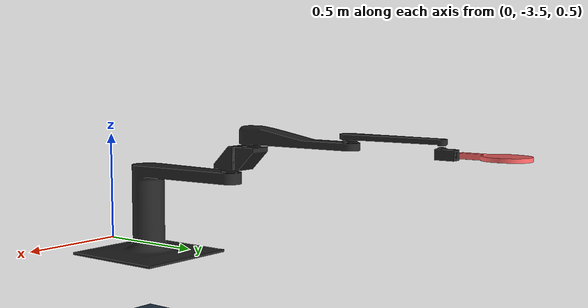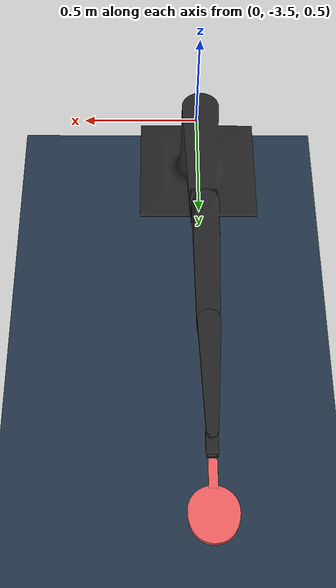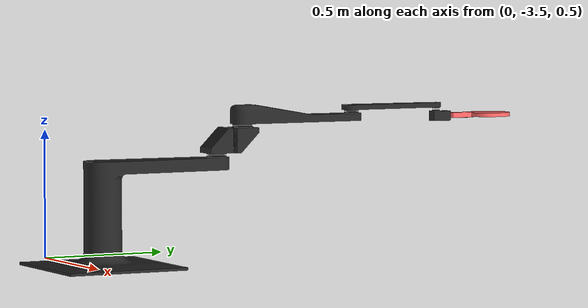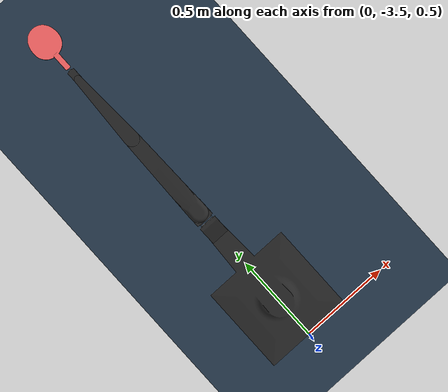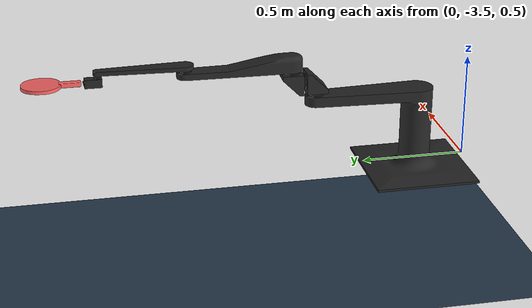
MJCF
<mujoco>
  <compiler meshdir="assets" texturedir="assets"/>
  <statistic extent="1.5" meansize=".05"/>

  <option timestep="0.002" jacobian="auto"/>

  <visual>
    <rgba haze="0.15 0.25 0.35 1"/>
    <quality shadowsize="4096"/>
    <map stiffness="700" shadowscale="0.5" fogstart="10" fogend="15" zfar="40" haze="0.3"/>
  </visual>

  <asset>
    <texture type="skybox" builtin="gradient" rgb1="0.3 0.5 0.7" rgb2="0 0 0" width="512" height="512"/>
    <texture name="texplane" type="2d" builtin="checker" rgb1=".2 .3 .4" rgb2=".1 0.15 0.2"
      width="512" height="512" mark="cross" markrgb=".8 .8 .8"/>

    <!-- Tisch-Mesh wurde entfernt -->

    <mesh file="arm-base.obj"/>
    <mesh file="rotator.obj"/>
    <mesh file="arm1.obj"/>
    <mesh file="arm2.obj"/>
    <mesh file="paddle-rotator.obj"/>
    <mesh file="paddle.obj"/>

    <material name="matplane" reflectance="0.3" texture="texplane" texrepeat="1 1" texuniform="true"/>
  </asset>

  <worldbody>
    <!-- Lights -->
    <light directional="true" diffuse=".4 .4 .4" specular="0.1 0.1 0.1" pos="0 0 5.0" dir="0 0 -1" castshadow="false"/>
    <light directional="true" diffuse=".6 .6 .6" specular="0.2 0.2 0.2" pos="0 0 4" dir="0 0 -1"/>

    <!-- Cameras -->
    <camera name="top_down" pos="0 0 10" euler="0 0 90"/>

    <!-- Ground -->
    <geom name="ground" type="plane" size="0 0 1" pos="0 0 0" quat="1 0 0 0" material="matplane" condim="1"/>

    <!-- Tisch-Geom entfernt -->

    <!-- Arm Base (unverändert) -->
    <body name="base" pos="0 -3.255 0.45" euler="0 0 0">
      <joint type="slide" axis="0 1 0" name="base_slide_x" range="-1.8 1.8"/>
      <joint type="slide" axis="1 0 0" name="base_slide_y" range="-1.8 1.8"/>
      <geom type="mesh" mesh="arm-base" pos="0 0.95 0.42" euler="0 0 180" rgba=".15 .15 .15 1"/>

      <!-- Camera -->
      <camera name="follow" pos="0 -2.5 1.5" euler="80 0 0" mode="track"/>

      <!-- Rotator 1 -->
      <body name="rotator1" pos="0 0.5 0.425" euler="0 0 0">
        <joint type="hinge" axis="0 0 1" name="rotator1_joint"/>
        <geom type="mesh" mesh="rotator" pos="0 0.45 0" euler="0 0 180" rgba=".15 .15 .15 1"/>

        <!-- Rotator 2 -->
        <body name="rotator2" pos="0 0.055 0.06" euler="-90 0 0">
          <joint type="hinge" axis="0 0 1" name="rotator2_joint"/>
          <geom type="mesh" mesh="rotator" pos="0 -0.45 0" euler="0 0 0" rgba=".15 .15 .15 1"/>

          <!-- Arm 1 -->
          <body name="arm1" pos="0 -0.050 0.061" euler="90 0 0">
            <joint type="hinge" axis="0 0 1" name="arm1_joint"/>
            <geom type="mesh" mesh="arm1" pos="0 0.335 -0.11" euler="0 0 180" rgba=".15 .15 .15 1"/>

            <!-- Arm 2 -->
            <body name="arm2" pos="0 0.5 0.045" euler="0 0 0">
              <joint type="hinge" axis="0 0 1" name="arm2_joint"/>
              <geom type="mesh" mesh="arm2" pos="0 -0.164 -0.155" euler="0 0 180" rgba=".15 .15 .15 1"/>

              <!-- Paddle Rotator -->
              <body name="paddle_rotator" pos="0 0.4 0.015" euler="0 180 0">
                <joint type="hinge" axis="0 0 1" name="paddle_rotator_joint"/>
                <geom type="mesh" mesh="paddle-rotator" pos="0 -0.565 0.174" euler="0 0 0" rgba=".15 .15 .15 1"/>

                <!-- Paddle -->
                <body name="paddle" pos="0 0.065 0.035" euler="-90 0 0">
                  <joint type="hinge" axis="0 0 1" name="paddle_joint" range="0 0" damping="1000"/>
                  <geom type="mesh" mesh="paddle" pos="-0.094 0 0" euler="90 0 0" rgba="1 .4 .4 1"/>
                </body>
              </body>
            </body>
          </body>
        </body>
      </body>
    </body>
  </worldbody>

  <actuator>
    <motor name="base_motor_x" joint="base_slide_x" gear="1" />
    <motor name="base_motor_y" joint="base_slide_y" gear="1"/>
    <motor name="rotator1_motor" joint="rotator1_joint" gear="1"/>
    <motor name="rotator2_motor" joint="rotator2_joint" gear="1"/>
    <motor name="arm1_motor" joint="arm1_joint" gear="1"/>
    <motor name="arm2_motor" joint="arm2_joint" gear="1"/>
    <motor name="paddle_rotator_motor" joint="paddle_rotator_joint" gear="1"/>
    <motor name="paddle_motor" joint="paddle_joint" gear="1"/>
  </actuator>
</mujoco>
